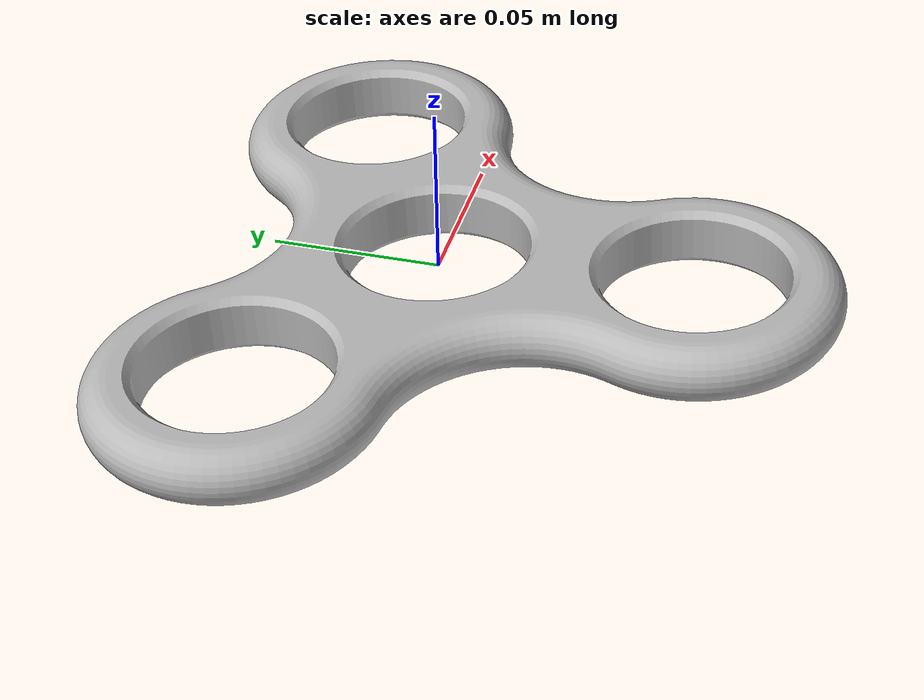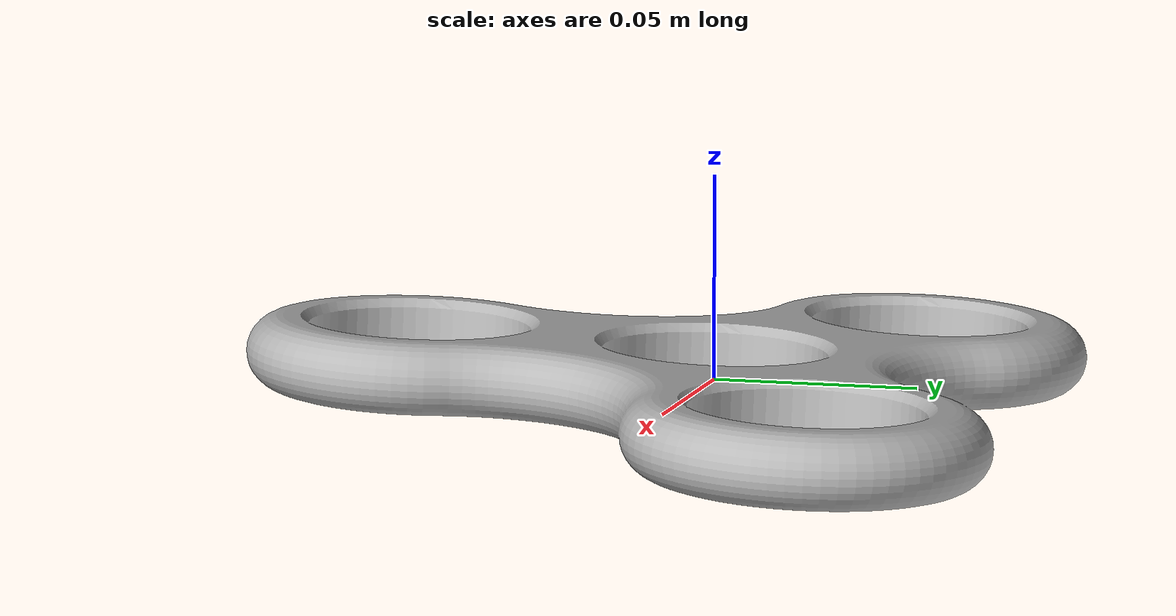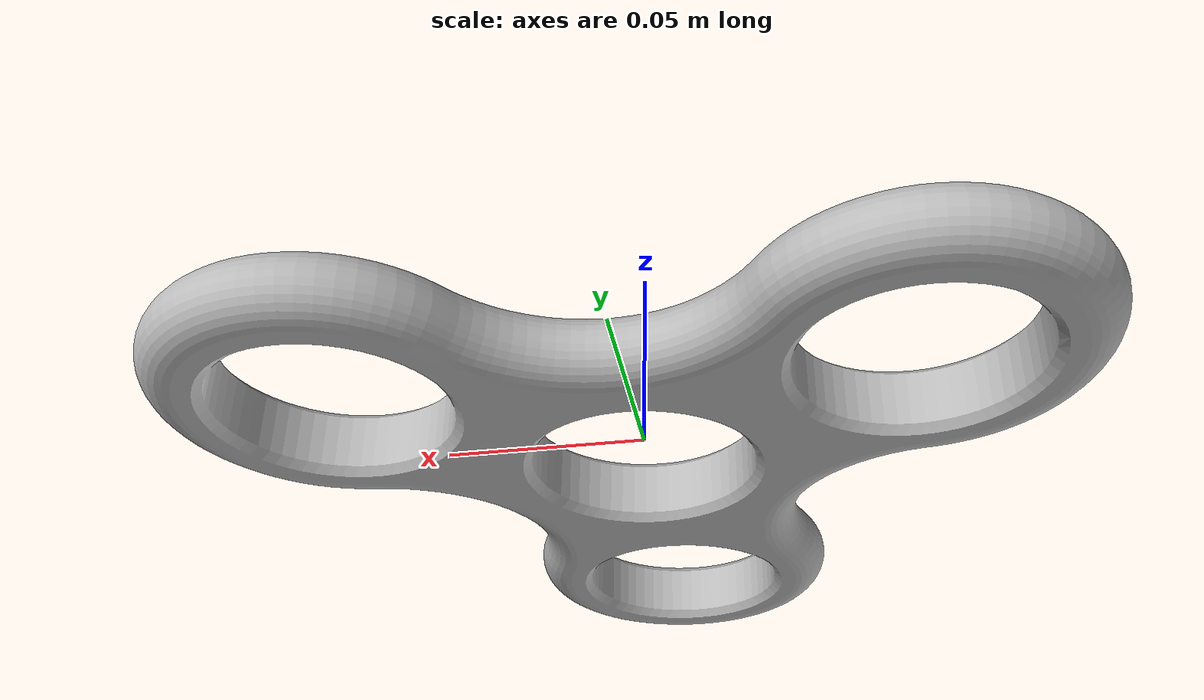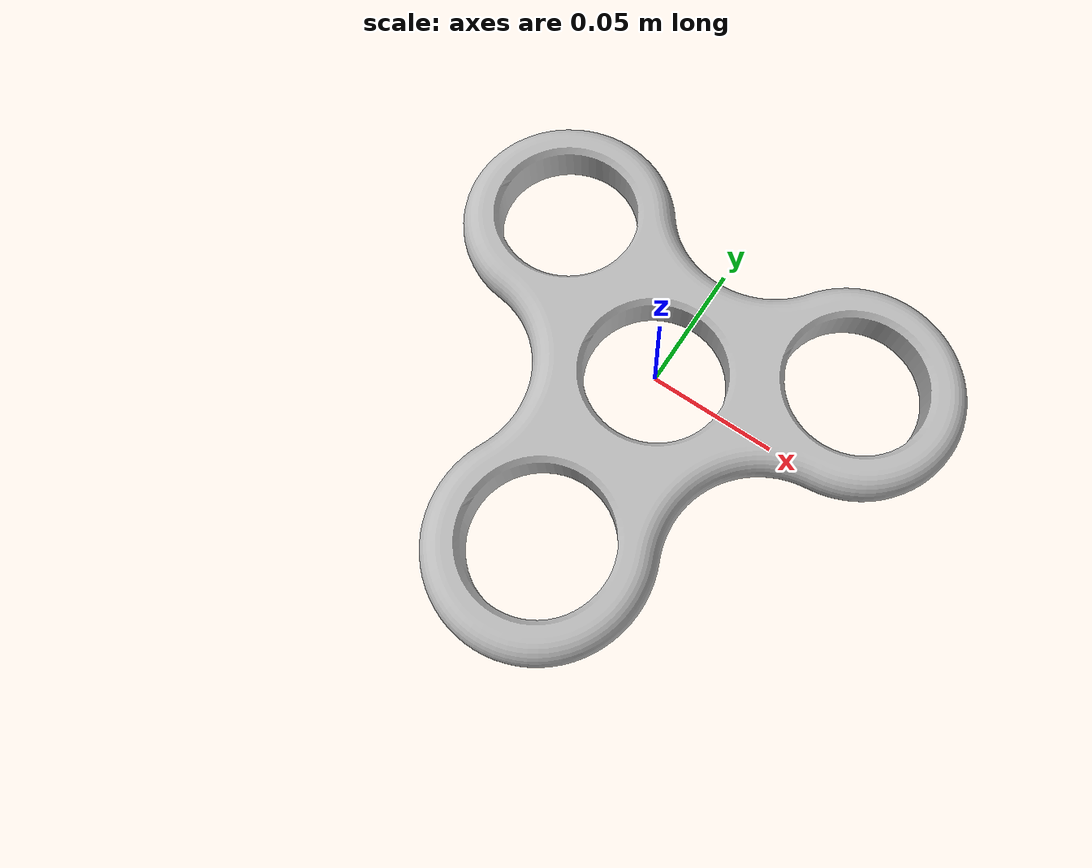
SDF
<?xml version="1.0" ?>
<sdf version="1.4">
  <model name="spinner">
    <static>false</static>

    <link name="link">
      <pose>0.0 0 0.0 -1.613014 0 0</pose>
<inertial>
        <mass>0.1</mass>
      </inertial>
     <collision name='collision'>
     <geometry>
          <mesh>
            <uri>file:///home/austin/EECS484_project/simulation/src/image_recognition/spinner/meshes/spinner.dae</uri>
          </mesh>
        </geometry>
      </collision>

      <visual name="visual">
        <geometry>
          <mesh>
            <uri>file:///home/austin/EECS484_project/simulation/src/image_recognition/spinner/meshes/spinner.dae</uri>
          </mesh>
        </geometry>
      </visual>
    </link>
  </model>
</sdf>
